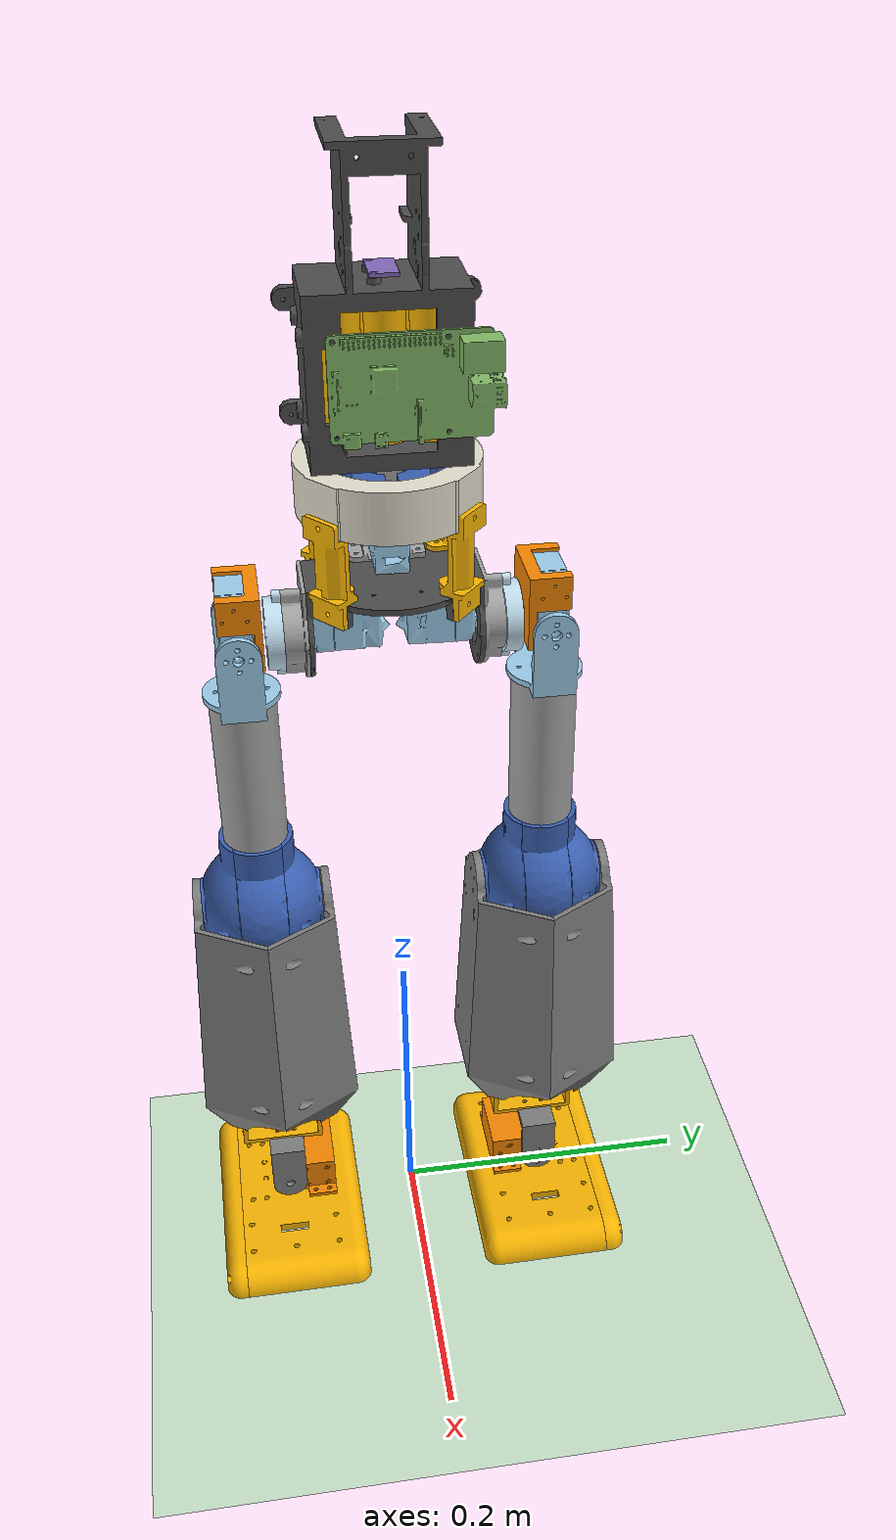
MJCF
<mujoco model="WildRobotDev">
  <option>
    <flag eulerdamp="disable" />
  </option>
  <include file="../common/scene.xml" />
  <include file="../common/mimic_sites.xml" />
  <compiler angle="radian" meshdir="assets" autolimits="true" />
  <default>
    <default class="WildRobotDev">
      <joint frictionloss="0.1" armature="0.005" />
      <position kp="50" dampratio="1" />
      <default class="visual">
        <geom type="mesh" contype="0" conaffinity="0" group="2" />
      </default>
      <default class="collision">
        <geom group="3" />
      </default>
    </default>
  </default>
  <sensor>
    <gyro site="chest_imu" name="chest_imu_gyro" noise="0.0002" cutoff="100" />
    <accelerometer site="chest_imu" name="chest_imu_accel" noise="0.0015" cutoff="100" />
    <magnetometer site="chest_imu" name="chest_imu_mag" noise="0.3" />
    <framequat objtype="site" objname="chest_imu" name="chest_imu_quat" />
    <gyro site="left_knee_imu" name="left_knee_imu_gyro" noise="0.00005" cutoff="200" />
    <accelerometer site="left_knee_imu" name="left_knee_imu_accel" noise="0.0008" cutoff="200" />
    <gyro site="right_knee_imu" name="right_knee_imu_gyro" noise="0.00005" cutoff="200" />
    <accelerometer site="right_knee_imu" name="right_knee_imu_accel" noise="0.0008" cutoff="200" />
    <gyro site="pelvis_mimic" name="pelvis_gyro" />
    <accelerometer site="pelvis_mimic" name="pelvis_accel" />
    <velocimeter site="pelvis_mimic" name="pelvis_local_linvel" />
    <framequat objtype="site" objname="pelvis_mimic" name="pelvis_quat" />
    <framezaxis objtype="site" objname="pelvis_mimic" name="pelvis_upvector" />
    <framexaxis objtype="site" objname="pelvis_mimic" name="pelvis_forwardvector" />
    <framelinvel objtype="site" objname="pelvis_mimic" name="pelvis_global_linvel" />
    <frameangvel objtype="site" objname="pelvis_mimic" name="pelvis_global_angvel" />
    <gyro site="right_hip_mimic" name="right_hip_gyro" />
    <accelerometer site="right_hip_mimic" name="right_hip_accel" />
    <framequat objtype="site" objname="right_hip_mimic" name="right_hip_quat" />
    <frameangvel objtype="site" objname="right_hip_mimic" name="right_hip_angvel" />
    <gyro site="right_knee_mimic" name="right_knee_gyro" />
    <accelerometer site="right_knee_mimic" name="right_knee_accel" />
    <framequat objtype="site" objname="right_knee_mimic" name="right_knee_quat" />
    <framelinvel objtype="site" objname="right_knee_mimic" name="right_knee_linvel" />
    <gyro site="right_foot_mimic" name="right_foot_gyro" />
    <accelerometer site="right_foot_mimic" name="right_foot_accel" />
    <framequat objtype="site" objname="right_foot_mimic" name="right_foot_quat" />
    <framelinvel objtype="site" objname="right_foot_mimic" name="right_foot_linvel" />
    <framezaxis objtype="site" objname="right_foot_mimic" name="right_foot_upvector" />
    <gyro site="left_hip_mimic" name="left_hip_gyro" />
    <accelerometer site="left_hip_mimic" name="left_hip_accel" />
    <framequat objtype="site" objname="left_hip_mimic" name="left_hip_quat" />
    <frameangvel objtype="site" objname="left_hip_mimic" name="left_hip_angvel" />
    <gyro site="left_knee_mimic" name="left_knee_gyro" />
    <accelerometer site="left_knee_mimic" name="left_knee_accel" />
    <framequat objtype="site" objname="left_knee_mimic" name="left_knee_quat" />
    <framelinvel objtype="site" objname="left_knee_mimic" name="left_knee_linvel" />
    <gyro site="left_foot_mimic" name="left_foot_gyro" />
    <accelerometer site="left_foot_mimic" name="left_foot_accel" />
    <framequat objtype="site" objname="left_foot_mimic" name="left_foot_quat" />
    <framelinvel objtype="site" objname="left_foot_mimic" name="left_foot_linvel" />
    <framezaxis objtype="site" objname="left_foot_mimic" name="left_foot_upvector" />
  </sensor>
  <default>
    <default class="htd45hServo">
      <geom contype="0" conaffinity="0" />
      <joint damping="0.08516" frictionloss="0.022275" armature="0.024992" />
      <position kp="21.1" kv="0.5" forcerange="-4.0 4.0" />
    </default>
    <default class="backlash">
      <joint damping="0.01" frictionloss="0" armature="0.01" limited="true" range="-0.008726646259971648 0.008726646259971648" />
    </default>
  </default>
  <worldbody>
    <body name="waist" pos="0 0 0.5" quat="1 0 0 0" childclass="WildRobotDev">
      <freejoint name="waist_freejoint" />
      <inertial pos="-0.00181517 -3.08835e-05 0.00596571" mass="0.439621" fullinertia="0.000998265 0.000698685 0.00070313 -7.22885e-08 1.38528e-05 5.24148e-07" />
      <geom type="mesh" class="visual" pos="-0.0596393 -0.00143119 -0.0273687" quat="0.706991 0.707223 -0 2.16453e-17" mesh="htd_45h_1circle" material="htd_45h_1circle_material" />
      <geom type="mesh" class="visual" pos="0.000128558 -0.000153209 0.12518" quat="0.34202 -1.65887e-17 -5.55112e-17 -0.939693" mesh="waist_trunk_support" material="waist_trunk_support_material" />
      <geom type="mesh" class="visual" pos="-1.8982e-19 0 0" quat="0.707107 0 0 -0.707107" mesh="trunk_bottom" material="trunk_bottom_material" />
      <geom type="mesh" class="visual" pos="-0.00619509 -0.059645 -0.00396881" quat="0.707107 0.000116219 0.000116219 0.707107" mesh="htd_45h_1circle" material="htd_45h_1circle_material" />
      <geom type="mesh" class="visual" pos="5.89806e-17 -3.1225e-17 0" quat="0.707107 0 0 -0.707107" mesh="trunk_servo_connect" material="trunk_servo_connect_material" />
      <geom type="mesh" class="visual" pos="1.38778e-17 -0.00025 1.47949e-17" quat="0.707107 0 0 0.707107" mesh="hip_cover" material="hip_cover_material" />
      <geom type="mesh" class="visual" pos="-1.59595e-16 -1.66533e-16 0.12518" quat="0.34202 -5.80156e-17 0 -0.939693" mesh="scroll_out" material="scroll_out_material" />
      <geom type="mesh" class="visual" pos="0.000128558 0.000153209 0.12518" quat="0.939693 -2.94205e-17 -1.35637e-16 -0.34202" mesh="waist_trunk_support" material="waist_trunk_support_material" />
      <geom type="mesh" class="visual" pos="1.38778e-17 -0.0001 1.53661e-17" quat="0.707107 0 1.11022e-16 0.707107" mesh="hip_trunk_connect" material="hip_trunk_connect_material" />
      <geom type="mesh" class="visual" pos="-0.000128558 -0.000153209 0.12518" quat="0.34202 -0 -5.91646e-31 0.939693" mesh="waist_trunk_support" material="waist_trunk_support_material" />
      <geom type="mesh" class="visual" pos="-0.000128558 0.000153209 0.12518" quat="0.939693 0 -0 0.34202" mesh="waist_trunk_support" material="waist_trunk_support_material" />
      <geom type="mesh" class="visual" pos="-1.38778e-17 0.00025 1.46954e-17" quat="0.707107 0 2.22045e-16 -0.707107" mesh="hip_cover" material="hip_cover_material" />
      <geom type="mesh" class="visual" pos="0.0596393 0.00143119 -0.0273687" quat="2.16453e-17 0 -0.707223 -0.706991" mesh="htd_45h_1circle" material="htd_45h_1circle_material" />
      <geom type="mesh" class="visual" pos="-1.38778e-17 0.0001 1.3452e-17" quat="0.707107 0 1.11022e-16 -0.707107" mesh="hip_trunk_connect" material="hip_trunk_connect_material" />
      <site group="3" name="pelvis_mimic" pos="0 0 0" quat="1 0 0 0" />
      <body name="right_hip" pos="4.74705e-05 -0.0536 -0.0335836" quat="0.706694 -0.707519 -0.000292013 0.000292354">
        <joint axis="0 0 1" name="right_hip_pitch" type="hinge" range="-1.5707963267948957 0.5235987755982997" class="htd45hServo" />
        <inertial pos="0.00272374 -0.00897832 -0.0331404" mass="0.0849728" fullinertia="2.00434e-05 1.92798e-05 2.44237e-05 -3.96751e-07 7.91944e-07 -1.48675e-06" />
        <geom type="mesh" class="visual" pos="-0.0254688 -0.0063813 -0.0961393" quat="0.000116219 -0.707107 -0.000116219 -0.707107" mesh="htd_45h_1circle" material="htd_45h_1circle_material" />
        <geom type="mesh" class="visual" pos="-0.0001 -0.03359 0.0566" quat="0.5 0.5 -0.5 0.5" mesh="hip_servo_hook_right" material="hip_servo_hook_right_material" />
        <site group="3" name="right_hip_mimic" pos="-0.000628163 -9.99278e-05 -0.0365495" quat="0.707102 0.707102 0.00246826 0.00246826" />
        <body name="upper_leg" pos="0.0267 -0.000166429 -0.0364525" quat="0.706814 -0.00041245 -0.707399 -0.000412109">
          <joint axis="0 0 1" name="right_hip_roll" type="hinge" range="-0.17453292519943206 1.5707963267948974" class="htd45hServo" />
          <inertial pos="-0.00104181 0.159312 0.0267034" mass="0.236565" fullinertia="0.000987068 0.000125887 0.000979617 9.86461e-06 9.63535e-09 1.07533e-06" />
          <geom type="mesh" class="visual" pos="-0.095 -2.08167e-17 0.0267" quat="0.707107 0.707107 1.11022e-16 3.86731e-17" mesh="up_leg_servo_connect" material="up_leg_servo_connect_material" />
          <geom type="mesh" class="visual" pos="-4.02456e-16 0.174352 0.1872" quat="0.5 0.5 0.5 -0.5" mesh="icm45686" material="icm45686_material" />
          <geom type="mesh" class="visual" pos="-0.0948 -0.0004 0.0266985" quat="0.707105 0.707109 -2.84803e-06 2.84595e-06" mesh="knee_ball_left" material="knee_ball_left_material" />
          <geom type="mesh" class="visual" pos="-0.095 -0.0002 0.0267" quat="0.707107 0.707107 7.77156e-16 3.66896e-16" mesh="knee_ball_mid" material="knee_ball_mid_material" />
          <geom type="mesh" class="visual" pos="-0.095 1.38778e-16 0.0267" quat="0.707107 0.707107 0 -7.3325e-17" mesh="up_leg" material="up_leg_material" />
          <geom type="mesh" class="visual" pos="0.0253613 0.198628 -0.0329432" quat="0.706811 0.000530114 -0.707402 0.000526879" mesh="htd_45h_1circle" material="htd_45h_1circle_material" />
          <geom type="mesh" class="visual" pos="-0.0952 -0.000399963 0.0268019" quat="0.707365 0.706849 -2.31378e-05 2.31379e-05" mesh="knee_ball_right" material="knee_ball_right_material" />
          <site group="3" name="right_knee_mimic" pos="0.000338462 0.192501 0.0266257" quat="0.498751 0.501662 0.498337 -0.501241" />
          <site group="3" name="right_knee_imu" pos="-3.33067e-16 0.173352 0.0264651" quat="0.5 0.5 0.5 -0.5" />
          <body name="lower_leg" pos="-0.02685 0.192352 0.0267" quat="1.83705e-06 -0.707104 1.83913e-06 -0.70711">
            <joint axis="0 0 1" name="right_knee_pitch" type="hinge" range="0.0 1.3962634015954636" class="htd45hServo" />
            <inertial pos="-0.000521354 -0.101401 0.0270617" mass="0.380663" fullinertia="0.00177714 0.000669988 0.00168908 1.88914e-05 3.0835e-08 -3.5834e-05" />
            <geom type="mesh" class="visual" pos="-2.5975e-15 0.192752 -0.0677579" quat="0.5 -0.5 -0.5 -0.5" mesh="low_leg_right" material="low_leg_right_material" />
            <geom type="mesh" class="visual" pos="-5.69437e-16 0.192752 -0.0677579" quat="0.5 -0.5 -0.5 -0.5" mesh="low_leg_left" material="low_leg_left_material" />
            <geom type="mesh" class="visual" pos="0.0596393 -0.173769 0.0526109" quat="9.4369e-15 2.62544e-15 -1 0.000164358" mesh="htd_45h_1circle" material="htd_45h_1circle_material" />
            <body name="right_ankle" pos="-4.74705e-05 -0.179984 0.000442075" quat="2.40923e-07 -0.00041321 0.000583051 -1">
              <joint axis="0 0 1" name="right_ankle_pitch" type="hinge" range="-0.5235987755983201 0.5235987755982775" class="htd45hServo" />
              <inertial pos="-0.000778386 0.0291765 0.0259275" mass="0.0230191" fullinertia="1.34186e-05 1.32703e-05 1.41853e-05 1.80568e-07 1.56329e-08 -2.24395e-07" />
              <geom type="mesh" class="visual" pos="-1.00137e-15 0.0722 0.0268" quat="0.5 0.5 0.5 -0.5" mesh="servo_bracket_btm" material="servo_bracket_btm_material" />
              <geom type="mesh" class="visual" pos="-1.12407e-15 0.0732 0.0268" quat="0.5 0.5 -0.5 0.5" mesh="servo_bracket_top" material="servo_bracket_top_material" />
              <body name="right_foot" pos="-0.0268 0.0594 0.0268" quat="0.5 0.5 -0.5 -0.5">
                <joint axis="0 0 1" name="right_foot_roll" type="hinge" range="-0.3490658503988375 0.3490658503988943" class="htd45hServo" />
                <inertial pos="-0.0182605 0.00187575 -0.0419443" mass="0.413618" fullinertia="0.000978456 0.000752203 0.000319832 -1.71895e-05 -3.90028e-05 -1.62365e-05" />
                <geom type="mesh" class="visual" pos="-0.0128256 0.159815 -0.0265243" quat="0.499915 0.500085 0.499502 0.500498" mesh="foot_main_right" material="foot_main_right_material" />
                <geom type="mesh" class="visual" pos="-0.0125255 -0.00118539 -0.0266289" quat="0.499915 0.500085 0.499502 0.500498" mesh="foot_btm_front" material="foot_btm_front_material" />
                <geom type="mesh" class="collision" pos="-0.0125255 -0.00118539 -0.0266289" quat="0.499915 0.500085 0.499502 0.500498" mesh="foot_btm_front" material="foot_btm_front_material" name="right_foot_btm_front" />
                <geom type="mesh" class="visual" pos="-0.0128256 0.159815 -0.0265243" quat="0.499915 0.500085 0.499502 0.500498" mesh="foot_side_right" material="foot_side_right_material" />
                <geom type="mesh" class="visual" pos="-0.0128254 -0.000185294 -0.0267108" quat="0.500498 -0.499502 0.500085 -0.499915" mesh="btm_servo_support" material="btm_servo_support_material" />
                <geom type="mesh" class="visual" pos="-0.0105255 -0.00118539 -0.0266273" quat="0.499915 0.500085 0.499502 0.500498" mesh="foot_btm_back" material="foot_btm_back_material" />
                <geom type="mesh" class="collision" pos="-0.0105255 -0.00118539 -0.0266273" quat="0.499915 0.500085 0.499502 0.500498" mesh="foot_btm_back" material="foot_btm_back_material" name="right_foot_btm_back" />
                <geom type="mesh" class="visual" pos="-0.0596436 0.0062757 -0.0522108" quat="1 0.00074741 -0.00041321 3.08837e-07" mesh="htd_45h_1circle" material="htd_45h_1circle_material" />
                <site group="3" name="right_foot_mimic" pos="-0.0294117 0.00930168 -0.0432369" quat="0.707399 0.000412109 0.706814 0.00041245" />
              </body>
            </body>
          </body>
        </body>
      </body>
      <body name="left_hip" pos="-4.74705e-05 0.0536 -0.0335836" quat="0.000292354 -0.000292013 0.707519 -0.706694">
        <joint axis="0 0 1" name="left_hip_pitch" type="hinge" range="-0.5235987755982988 1.5707963267948966" class="htd45hServo" />
        <inertial pos="-0.00291444 -0.00897832 -0.0331054" mass="0.0849728" fullinertia="2.00234e-05 1.92641e-05 2.44282e-05 3.89652e-07 -8.26001e-07 -1.4809e-06" />
        <geom type="mesh" class="visual" pos="-0.0001 -0.03359 0.0566" quat="0.5 0.5 0.5 -0.5" mesh="hip_servo_hook_left" material="hip_servo_hook_left_material" />
        <geom type="mesh" class="visual" pos="0.0252688 -0.0063813 0.0231393" quat="0.000116219 -0.707107 0.000116219 0.707107" mesh="htd_45h_1circle" material="htd_45h_1circle_material" />
        <site group="3" name="left_hip_mimic" pos="0.000428163 -9.99278e-05 -0.0364505" quat="0.00246826 -0.00246826 -0.707102 0.707102" />
        <body name="upper_leg_2" pos="-0.0269 -0.000166429 -0.0365475" quat="0.707399 -0.000412109 0.706814 0.00041245">
          <joint axis="0 0 1" name="left_hip_roll" type="hinge" range="-1.5707963267948966 0.17453292519943295" class="htd45hServo" />
          <inertial pos="-0.00104181 0.159312 0.0267034" mass="0.236565" fullinertia="0.000987068 0.000125887 0.000979617 9.86461e-06 9.63535e-09 1.07533e-06" />
          <geom type="mesh" class="visual" pos="-0.095 6.93889e-18 0.0267" quat="0.707107 0.707107 0 -2.15551e-19" mesh="up_leg_servo_connect" material="up_leg_servo_connect_material" />
          <geom type="mesh" class="visual" pos="5.55112e-17 0.174352 0.1872" quat="0.5 0.5 0.5 -0.5" mesh="icm45686" material="icm45686_material" />
          <geom type="mesh" class="visual" pos="-0.0948 -0.0004 0.0266985" quat="0.707105 0.707109 -2.84803e-06 2.84595e-06" mesh="knee_ball_left" material="knee_ball_left_material" />
          <geom type="mesh" class="visual" pos="-0.095 -0.0002 0.0267" quat="0.707107 0.707107 -1.11022e-16 1.05314e-16" mesh="knee_ball_mid" material="knee_ball_mid_material" />
          <geom type="mesh" class="visual" pos="-0.095 1.38778e-17 0.0267" quat="0.707107 0.707107 0 6.36741e-17" mesh="up_leg" material="up_leg_material" />
          <geom type="mesh" class="visual" pos="0.0253613 0.198628 -0.0329432" quat="0.706811 0.000530114 -0.707402 0.000526879" mesh="htd_45h_1circle" material="htd_45h_1circle_material" />
          <geom type="mesh" class="visual" pos="-0.0952 -0.000399963 0.0268019" quat="0.707365 0.706849 -2.31378e-05 2.31379e-05" mesh="knee_ball_right" material="knee_ball_right_material" />
          <site group="3" name="left_knee_mimic" pos="0.000338462 0.192501 0.0266257" quat="0.498751 0.501662 0.498337 -0.501241" />
          <site group="3" name="left_knee_imu" pos="1.11022e-16 0.173352 0.0264651" quat="0.5 0.5 0.5 -0.5" />
          <body name="lower_leg_2" pos="-0.02685 0.192352 0.0267" quat="1.83705e-06 -0.707104 1.83913e-06 -0.70711">
            <joint axis="0 0 1" name="left_knee_pitch" type="hinge" range="0.0 1.3962634015954636" class="htd45hServo" />
            <inertial pos="-0.000521354 -0.101401 0.0270617" mass="0.380663" fullinertia="0.00177714 0.000669988 0.00168908 1.88914e-05 3.0835e-08 -3.5834e-05" />
            <geom type="mesh" class="visual" pos="-2.21559e-15 0.192752 -0.0677579" quat="0.5 -0.5 -0.5 -0.5" mesh="low_leg_right" material="low_leg_right_material" />
            <geom type="mesh" class="visual" pos="-2.87964e-16 0.192752 -0.0677579" quat="0.5 -0.5 -0.5 -0.5" mesh="low_leg_left" material="low_leg_left_material" />
            <geom type="mesh" class="visual" pos="0.0596393 -0.173769 0.0526109" quat="1.05471e-14 1.04263e-16 -1 0.000164358" mesh="htd_45h_1circle" material="htd_45h_1circle_material" />
            <body name="left_ankle" pos="-4.74705e-05 -0.179984 0.000442075" quat="2.40923e-07 -0.00041321 0.000583051 -1">
              <joint axis="0 0 1" name="left_ankle_pitch" type="hinge" range="-0.5235987755982988 0.5235987755982988" class="htd45hServo" />
              <inertial pos="0.000778386 0.0291765 0.0259275" mass="0.0230191" fullinertia="1.34186e-05 1.32703e-05 1.41853e-05 -1.80568e-07 -1.56329e-08 -2.24395e-07" />
              <geom type="mesh" class="visual" pos="-1.13299e-17 0.0722 0.0268" quat="0.5 0.5 -0.5 0.5" mesh="servo_bracket_btm" material="servo_bracket_btm_material" />
              <geom type="mesh" class="visual" pos="-4.77049e-18 0.0732 0.0268" quat="0.5 0.5 -0.5 0.5" mesh="servo_bracket_top" material="servo_bracket_top_material" />
              <body name="left_foot" pos="0.0268 0.0594 0.0268" quat="0.5 -0.5 0.5 -0.5">
                <joint axis="0 0 1" name="left_foot_roll" type="hinge" range="-0.3490658503988659 0.3490658503988659" class="htd45hServo" />
                <inertial pos="-0.0183724 0.00183883 -0.0102858" mass="0.413618" fullinertia="0.00096407 0.00073874 0.0003209 -1.74031e-05 2.95872e-05 1.47775e-05" />
                <geom type="mesh" class="visual" pos="-0.0128254 -0.000185294 -0.0267108" quat="0.500498 -0.499502 0.500085 -0.499915" mesh="btm_servo_support" material="btm_servo_support_material" />
                <geom type="mesh" class="visual" pos="-0.0596436 0.0062757 -0.0522108" quat="1 0.00074741 -0.00041321 3.08837e-07" mesh="htd_45h_1circle" material="htd_45h_1circle_material" />
                <geom type="mesh" class="visual" pos="-0.0125253 -0.0011852 -0.0267946" quat="0.500498 -0.499502 0.500085 -0.499915" mesh="foot_btm_back" material="foot_btm_back_material" />
                <geom type="mesh" class="collision" pos="-0.0125253 -0.0011852 -0.0267946" quat="0.500498 -0.499502 0.500085 -0.499915" mesh="foot_btm_back" material="foot_btm_back_material" name="left_foot_btm_back" />
                <geom type="mesh" class="visual" pos="-0.0128254 -0.000185294 -0.0267108" quat="0.500498 -0.499502 0.500085 -0.499915" mesh="foot_side" material="foot_side_material" />
                <geom type="mesh" class="visual" pos="-0.0128254 -0.000185294 -0.0267108" quat="0.500498 -0.499502 0.500085 -0.499915" mesh="foot_main" material="foot_main_material" />
                <geom type="mesh" class="visual" pos="-0.0125255 -0.00118539 -0.0266289" quat="0.500498 -0.499502 0.500085 -0.499915" mesh="foot_btm_front" material="foot_btm_front_material" />
                <geom type="mesh" class="collision" pos="-0.0125255 -0.00118539 -0.0266289" quat="0.500498 -0.499502 0.500085 -0.499915" mesh="foot_btm_front" material="foot_btm_front_material" name="left_foot_btm_front" />
                <site group="3" name="left_foot_mimic" pos="-0.0294391 0.00926314 -0.0101901" quat="0.00041245 -0.706814 0.000412109 -0.707399" />
              </body>
            </body>
          </body>
        </body>
      </body>
      <body name="chassis" pos="1.97751e-05 4.17458e-05 0.0482" quat="0.000704463 0.707107 0.707106 0.000120096">
        <joint axis="0 0 1" name="waist_yaw" type="hinge" range="-0.5235987755982606 0.523598775598337" class="htd45hServo" />
        <inertial pos="0.00235226 0.00416672 -0.0682563" mass="0.841214" fullinertia="0.00126289 0.00149567 0.000913668 -0.000107674 2.45804e-05 3.30802e-05" />
        <geom type="mesh" class="visual" pos="0.0233086 -0.211191 -0.0331" quat="0.707107 0.707107 -2.02061e-14 -2.04114e-14" mesh="cell" material="cell_material" />
        <geom type="mesh" class="visual" pos="0.00985858 0.0311486 -0.068" quat="1 1.19943e-17 5.55112e-17 -2.55934e-14" mesh="rp_assemble" material="rp_assemble_material" />
        <geom type="mesh" class="visual" pos="-0.000141421 0.0233586 -0.068" quat="9.55702e-17 -2.56973e-14 -1 -1.31265e-17" mesh="batterybox" material="batterybox_material" />
        <geom type="mesh" class="visual" pos="0.0951086 -0.000141421 -0.119" quat="2.46218e-14 -7.29164e-17 -0 1" mesh="bno085" material="bno085_material" />
        <geom type="mesh" class="visual" pos="-0.000141421 -0.234991 -0.0331" quat="0.707107 0.707107 -2.02061e-14 -2.04114e-14" mesh="cell" material="cell_material" />
        <geom type="mesh" class="visual" pos="-0.0235914 -0.234991 -0.0331" quat="0.707107 0.707107 -2.02061e-14 -2.04114e-14" mesh="cell" material="cell_material" />
        <geom type="mesh" class="visual" pos="-0.000141421 -0.000141421 -0.0763796" quat="3.36128e-18 1 -2.28694e-14 -1.00215e-17" mesh="waist_platform" material="waist_platform_material" />
        <geom type="mesh" class="visual" pos="-0.000141421 -0.000141421 -0.0763796" quat="1.18927e-16 1 -2.5683e-14 -6.20414e-17" mesh="waist_platform_2" material="waist_platform_2_material" />
        <geom type="mesh" class="visual" pos="0.0233086 -0.234991 -0.0331" quat="0.707107 0.707107 -2.02061e-14 -2.04114e-14" mesh="cell" material="cell_material" />
        <geom type="mesh" class="visual" pos="-0.0235914 -0.211191 -0.0331" quat="0.707107 0.707107 -2.02061e-14 -2.04114e-14" mesh="cell" material="cell_material" />
        <geom type="mesh" class="visual" pos="-0.000141421 -0.211191 -0.0331" quat="0.707107 0.707107 -2.02061e-14 -2.04114e-14" mesh="cell" material="cell_material" />
        <site group="3" name="chest_imu" pos="0.000119839 -0.000141421 -0.119" quat="3.14602e-17 0.707107 0.707107 7.73198e-17" />
      </body>
    </body>
  </worldbody>
  <asset>
    <mesh file="foot_side_right.stl" />
    <mesh file="foot_btm_front.stl" />
    <mesh file="foot_main_right.stl" />
    <mesh file="low_leg_right.stl" />
    <mesh file="hip_trunk_connect.stl" />
    <mesh file="htd_45h_1circle.stl" />
    <mesh file="scroll_out.stl" />
    <mesh file="waist_trunk_support.stl" />
    <mesh file="waist_platform.stl" />
    <mesh file="trunk_bottom.stl" />
    <mesh file="hip_servo_hook_right.stl" />
    <mesh file="batterybox.stl" />
    <mesh file="foot_main.stl" />
    <mesh file="knee_ball_left.stl" />
    <mesh file="knee_ball_right.stl" />
    <mesh file="trunk_servo_connect.stl" />
    <mesh file="waist_platform_2.stl" />
    <mesh file="servo_bracket_btm.stl" />
    <mesh file="up_leg_servo_connect.stl" />
    <mesh file="hip_cover.stl" />
    <mesh file="foot_side.stl" />
    <mesh file="cell.stl" />
    <mesh file="foot_btm_back.stl" />
    <mesh file="up_leg.stl" />
    <mesh file="knee_ball_mid.stl" />
    <mesh file="servo_bracket_top.stl" />
    <mesh file="low_leg_left.stl" />
    <mesh file="btm_servo_support.stl" />
    <mesh file="hip_servo_hook_left.stl" />
    <mesh file="bno085.stl" />
    <mesh file="icm45686.stl" />
    <mesh file="rp_assemble.stl" />
    <material name="htd_45h_1circle_material" rgba="0.615686 0.811765 0.929412 1" />
    <material name="waist_trunk_support_material" rgba="0.980392 0.713725 0.00392157 1" />
    <material name="trunk_bottom_material" rgba="0.301961 0.301961 0.301961 1" />
    <material name="trunk_servo_connect_material" rgba="0.647059 0.647059 0.647059 1" />
    <material name="hip_cover_material" rgba="0.768627 0.886275 0.952941 1" />
    <material name="scroll_out_material" rgba="0.901961 0.878431 0.811765 1" />
    <material name="hip_trunk_connect_material" rgba="0.647059 0.647059 0.647059 1" />
    <material name="hip_servo_hook_right_material" rgba="0.972549 0.529412 0.00392157 1" />
    <material name="up_leg_servo_connect_material" rgba="0.615686 0.811765 0.929412 1" />
    <material name="icm45686_material" rgba="0.301961 0.301961 0.301961 1" />
    <material name="knee_ball_left_material" rgba="0.231373 0.380392 0.705882 1" />
    <material name="knee_ball_mid_material" rgba="0.231373 0.380392 0.705882 1" />
    <material name="up_leg_material" rgba="0.647059 0.647059 0.647059 1" />
    <material name="knee_ball_right_material" rgba="0.231373 0.380392 0.705882 1" />
    <material name="low_leg_right_material" rgba="0.498039 0.498039 0.498039 1" />
    <material name="low_leg_left_material" rgba="0.498039 0.498039 0.498039 1" />
    <material name="servo_bracket_btm_material" rgba="0.498039 0.498039 0.498039 1" />
    <material name="servo_bracket_top_material" rgba="0.980392 0.713725 0.00392157 1" />
    <material name="foot_main_right_material" rgba="0.980392 0.713725 0.00392157 1" />
    <material name="foot_btm_front_material" rgba="0.231373 0.380392 0.705882 1" />
    <material name="foot_side_right_material" rgba="0.980392 0.713725 0.00392157 1" />
    <material name="btm_servo_support_material" rgba="0.972549 0.529412 0.00392157 1" />
    <material name="foot_btm_back_material" rgba="0.768627 0.886275 0.952941 1" />
    <material name="hip_servo_hook_left_material" rgba="0.972549 0.529412 0.00392157 1" />
    <material name="foot_side_material" rgba="0.980392 0.713725 0.00392157 1" />
    <material name="foot_main_material" rgba="0.980392 0.713725 0.00392157 1" />
    <material name="cell_material" rgba="0.980392 0.713725 0.00392157 1" />
    <material name="rp_assemble_material" rgba="0.513725 0.737255 0.407843 1" />
    <material name="batterybox_material" rgba="0.301961 0.301961 0.301961 1" />
    <material name="bno085_material" rgba="0.513725 0.415686 0.733333 1" />
    <material name="waist_platform_material" rgba="0.231373 0.380392 0.705882 1" />
    <material name="waist_platform_2_material" rgba="0.231373 0.380392 0.705882 1" />
  </asset>
  <actuator>
    <position class="htd45hServo" name="right_hip_pitch" joint="right_hip_pitch" inheritrange="1" />
    <position class="htd45hServo" name="right_hip_roll" joint="right_hip_roll" inheritrange="1" />
    <position class="htd45hServo" name="right_knee_pitch" joint="right_knee_pitch" inheritrange="1" />
    <position class="htd45hServo" name="right_ankle_pitch" joint="right_ankle_pitch" inheritrange="1" />
    <position class="htd45hServo" name="right_foot_roll" joint="right_foot_roll" inheritrange="1" />
    <position class="htd45hServo" name="left_hip_pitch" joint="left_hip_pitch" inheritrange="1" />
    <position class="htd45hServo" name="left_hip_roll" joint="left_hip_roll" inheritrange="1" />
    <position class="htd45hServo" name="left_knee_pitch" joint="left_knee_pitch" inheritrange="1" />
    <position class="htd45hServo" name="left_ankle_pitch" joint="left_ankle_pitch" inheritrange="1" />
    <position class="htd45hServo" name="left_foot_roll" joint="left_foot_roll" inheritrange="1" />
    <position class="htd45hServo" name="waist_yaw" joint="waist_yaw" inheritrange="1" />
  </actuator>
  <equality />
</mujoco>

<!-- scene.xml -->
git s<mujoco model="scene">

  <visual>
    <headlight diffuse="0.6 0.6 0.6" ambient="0.3 0.3 0.3" specular="0 0 0"/>
    <rgba haze="0.15 0.25 0.35 1"/>
    <global azimuth="-130" elevation="-20"/>
  </visual>

   <asset>
       <texture builtin="gradient" height="100" rgb1=".4 .5 .6" rgb2="0 0 0" type="skybox" width="100"/>
       <texture name="texplane" type="2d" builtin="checker" rgb1=".2 .3 .4" rgb2=".1 0.15 0.2" width="100" height="100"/>
       <material name="MatPlane" reflectance="0.5" texture="texplane" texrepeat="1 1" texuniform="true"/>
   </asset>

    <worldbody>
        <geom name="floor" friction="1 .1 .1" pos="0 0 0" size="0 0 0.125" type="plane" material="MatPlane" condim="3" conaffinity="1" contype="1" group="2" rgba="0.8 0.9 0.8 1"/>
        <light cutoff="1000" diffuse="1 1 1" dir="-0 0 -1.3" directional="true" exponent="1" pos="0 0 1.3" specular=".1 .1 .1" castshadow="false"/>
    </worldbody>
</mujoco>

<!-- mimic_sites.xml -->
<mujoco model="mimic_sites">
    <default>
    <default class="mimic">
        <site group="1" type="box" size="0.075 0.05 0.025" rgba="1.0 0.0 0.0 0.5"/>
    </default>
    </default>
</mujoco>
